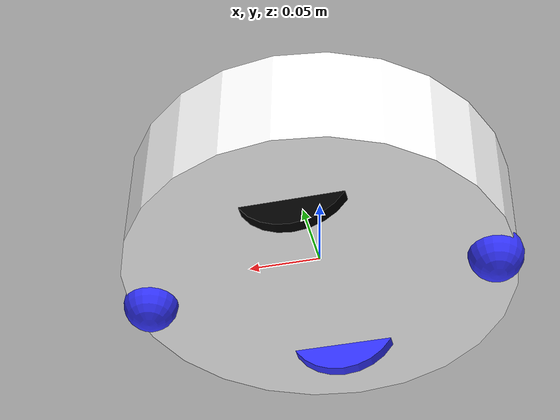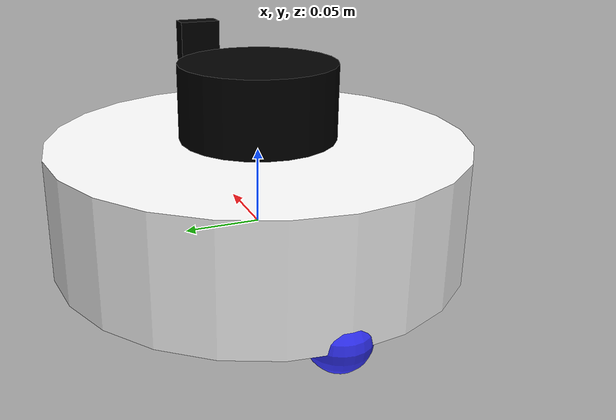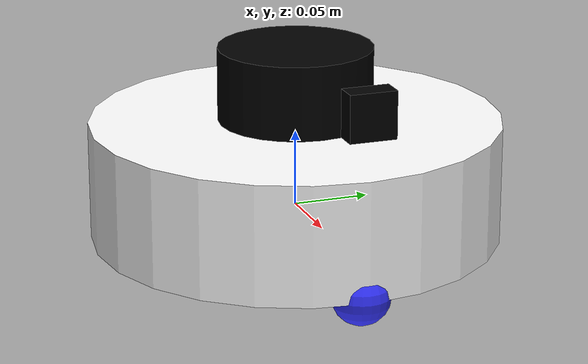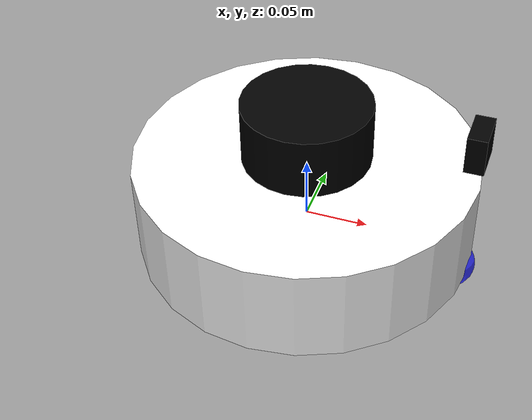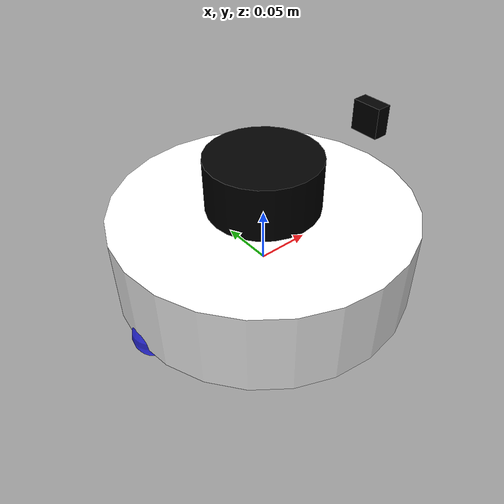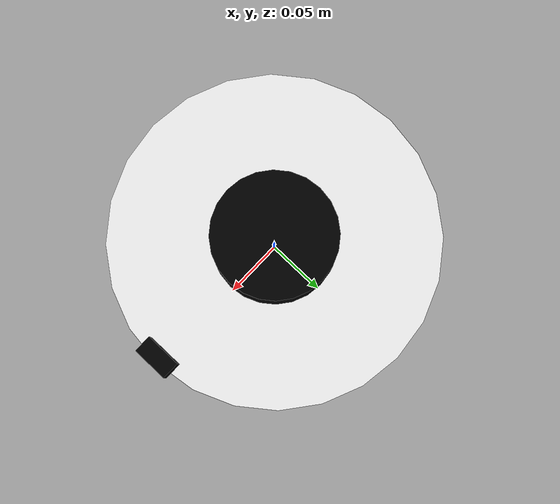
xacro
<?xml version="1.0"?>
<robot xmlns:xacro="http://www.ros.org/wiki/xacro"  name="robot">

    <xacro:arg name="use_ros2_control" default="true"/>
    <xacro:arg name="sim_mode" default="false" />

    <xacro:include filename="robot_core.urdf.xacro"/>

    <xacro:if value="$(arg use_ros2_control)">
        <xacro:include filename="ros2_control.xacro"/>
    </xacro:if>
    <xacro:unless value="$(arg use_ros2_control)">
        <xacro:include filename="gazebo_control.xacro"/>
    </xacro:unless>
    <xacro:include filename="lidar.xacro"/>
    <xacro:include filename="camera.xacro"/>

</robot>

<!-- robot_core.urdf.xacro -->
<robot xmlns:xacro="http://www.ros.org/wiki/xacro"  name="robot">

<xacro:include filename="inertial_macros.xacro"/>

    <material name="white">
        <color rgba="1 1 1 1"/>
    </material>

    <material name="black">
        <color rgba="0 0 0 1"/>
    </material>

    <material name="orange">
        <color rgba="1 0.3 0.1 1"/>
    </material>

    <material name="blue">
        <color rgba="0.2 0.2 1 1"/>
    </material>

    <material name="green">
        <color rgba="0 1 0 1"/>
    </material>

    <material name="red">
        <color rgba="0.8 0 0 1"/>
    </material>

    <material name="grey">
        <color rgba="0.2 0.2 0.2 1"/>
    </material>

<!-- BASE LINK -->
  <link name="base_link">
  </link>

  <link name="base_footprint">
  </link>

  <joint name="base_footprint_joint" type="fixed">
    <parent link="base_link"/>
    <child link="base_footprint"/>
    <origin xyz="0.0 0.0 0.0" rpy="0 0 0"/>
</joint>

<!-- CHASSIS LINK -->

  <link name="chassis">
      <visual>
        <geometry>
          <cylinder radius="0.135" length="0.078"/>
        </geometry>
        <material name="white"/>
      </visual>

      <collision>
        <geometry>
          <cylinder radius="0.135" length="0.078"/>
        </geometry>
      </collision>
      <xacro:inertial_cylinder mass="0.4" length="0.078" radius="0.135">
        <origin xyz="0 0.018 0" rpy="0 0 0"/>
      </xacro:inertial_cylinder>
  </link>

  <joint name="chassis_joint" type="fixed">
    <parent link="base_link"/>
    <child link="chassis"/>
    <origin xyz="0.0 0 0.02" rpy="0 0 0"/>
  </joint>

<!-- LEFT WHEEL LINK -->

  <link name="left_wheel">
      <visual>
        <geometry>
          <cylinder radius="0.04" length="0.008"/>
        </geometry>
        <material name="black"/>
      </visual>

      <collision>
        <geometry>
          <cylinder radius="0.04" length="0.008"/>
        </geometry>
      </collision>
      <xacro:inertial_cylinder mass="0.1" length="0.008" radius="0.04">
        <origin xyz="0 0 0" rpy="0 0 0"/>
      </xacro:inertial_cylinder>
  </link>

  <gazebo reference="left_wheel">
    <material>Gazebo/Black</material>
  </gazebo>

  <joint name="left_wheel_joint" type="continuous">
    <parent link="base_link"/>
    <child link="left_wheel"/>
    <origin xyz="0.0 0.078 0" rpy="-${pi/2} 0 0"/>
    <axis xyz="0 0 1"/>
</joint>
<!-- RIGHT WHEEL LINK -->

  <link name="right_wheel">
      <visual>

        <geometry>
          <cylinder radius="0.04" length="0.008"/>
        </geometry>
        <material name="blue"/>
      </visual>
      <collision>

        <geometry>
          <cylinder radius="0.04" length="0.008"/>
        </geometry>

      </collision>
      <xacro:inertial_cylinder mass="0.05" length="0.008" radius="0.04">
        <origin xyz="0 0 0" rpy="0 0 0"/>
      </xacro:inertial_cylinder>
  </link>
  <gazebo reference="right_wheel">
    <material>Gazebo/Black</material>

  </gazebo>
  <joint name="right_wheel_joint" type="continuous">
    <parent link="base_link"/>
    <child link="right_wheel"/>
    <origin xyz="0.0 -0.078 0.0" rpy="${pi/2} 0 0"/>
    <axis xyz="0 0 -1"/>
</joint>

<!-- CASTER WHEEL LINK-->

<link name="caster_wheel_front">

 <visual>

        <geometry>
          <sphere radius="0.019" />
        </geometry>
        <material name="blue"/>
      </visual>
      <collision>

        <geometry>
          <sphere radius="0.019" />
        </geometry>

      </collision>
      <xacro:inertial_sphere mass="0.1" radius="0.019">
        <origin xyz="0 0 0" rpy="0 0 0"/>
      </xacro:inertial_sphere>

</link>

<joint name="caster_wheel_front_joint" type="fixed">
  <parent link="chassis"/>
  <child link="caster_wheel_front"/>
  <origin xyz="0.12 0 -0.039"/>
</joint>

<gazebo reference="caster_wheel_front">
  <material>Gazebo/Black</material>
  <mu1 value="0.001"/>
  <mu2 value="0.001"/>
</gazebo>

<link name="caster_wheel_rear">

 <visual>

        <geometry>
          <sphere radius="0.019" />
        </geometry>
        <material name="blue"/>
      </visual>
      <collision>

        <geometry>
          <sphere radius="0.019" />
        </geometry>

      </collision>
      <xacro:inertial_sphere mass="0.1" radius="0.019">
        <origin xyz="0 0 0" rpy="0 0 0"/>
      </xacro:inertial_sphere>

</link>

<joint name="caster_wheel_rear_joint" type="fixed">
  <parent link="chassis"/>
  <child link="caster_wheel_rear"/>
  <origin xyz="-0.12 0 -0.039"/>
</joint>

<gazebo reference="caster_wheel_rear">
  <material>Gazebo/Black</material>
  <mu1 value="0.001"/>
  <mu2 value="0.001"/>
</gazebo>

</robot>

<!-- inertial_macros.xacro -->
<robot xmlns:xacro="http://www.ros.org/wiki/xacro" >

    <!-- Specify some standard inertial calculations https://en.wikipedia.org/wiki/List_of_moments_of_inertia -->
    <!-- These make use of xacro's mathematical functionality -->

    <xacro:macro name="inertial_sphere" params="mass radius *origin">
        <inertial>
            <xacro:insert_block name="origin"/>
            <mass value="${mass}" />
            <inertia ixx="${(2/5) * mass * (radius*radius)}" ixy="0.0" ixz="0.0"
                    iyy="${(2/5) * mass * (radius*radius)}" iyz="0.0"
                    izz="${(2/5) * mass * (radius*radius)}" />
        </inertial>
    </xacro:macro>

    <xacro:macro name="inertial_box" params="mass x y z *origin">
        <inertial>
            <xacro:insert_block name="origin"/>
            <mass value="${mass}" />
            <inertia ixx="${(1/12) * mass * (y*y+z*z)}" ixy="0.0" ixz="0.0"
                    iyy="${(1/12) * mass * (x*x+z*z)}" iyz="0.0"
                    izz="${(1/12) * mass * (x*x+y*y)}" />
        </inertial>
    </xacro:macro>

    <xacro:macro name="inertial_cylinder" params="mass length radius *origin">
        <inertial>
            <xacro:insert_block name="origin"/>
            <mass value="${mass}" />
            <inertia ixx="${(1/12) * mass * (3*radius*radius + length*length)}" ixy="0.0" ixz="0.0"
                    iyy="${(1/12) * mass * (3*radius*radius + length*length)}" iyz="0.0"
                    izz="${(1/2) * mass * (radius*radius)}" />
        </inertial>
    </xacro:macro>

</robot>

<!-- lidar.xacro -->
<robot xmlns:xacro="http://www.ros.org/wiki/xacro" >

    <link name="lidar_link">
        <inertial>
          <origin xyz="0 0 0" rpy="0 0 0"/>
          <mass value="0.125"/>
          <inertia ixx="0.001"  ixy="0"  ixz="0" iyy="0.001" iyz="0" izz="0.001" />
        </inertial>

        <collision>
          <origin xyz="0 0 0" rpy="0 0 0"/>
          <geometry>
             <cylinder radius="0.0508" length="0.055"/>
          </geometry>
        </collision>

        <visual>
          <origin xyz="0 0 0" rpy="0 0 0"/>
          <geometry>
             <cylinder radius="0.0508" length="0.055"/>
          </geometry>
          <material name="black"/>
        </visual>
      </link>

      <joint name="lidar_joint" type="fixed">
        <parent link="base_link"/>
        <child link="lidar_link"/>
        <origin xyz="0 0 0.08" rpy="0 0 0"/>
      </joint>

      <gazebo reference="lidar_link">
        <sensor name="lidar" type="ray">
          <always_on>true</always_on>
          <visualize>true</visualize>
          <update_rate>5</update_rate>
          <ray>
            <scan>
              <horizontal>
                <samples>360</samples>
                <resolution>1.000000</resolution>
                <min_angle>0.000000</min_angle>
                <max_angle>6.280000</max_angle>
              </horizontal>
            </scan>
            <range>
              <min>0.120000</min>
              <max>3.5</max>
              <resolution>0.015000</resolution>
            </range>
            <noise>
              <type>gaussian</type>
              <mean>0.0</mean>
              <stddev>0.01</stddev>
            </noise>
          </ray>
          <plugin name="scan" filename="libgazebo_ros_ray_sensor.so">
            <ros>
              <remapping>~/out:=scan</remapping>
            </ros>
            <output_type>sensor_msgs/LaserScan</output_type>
            <frame_name>lidar_link</frame_name>
          </plugin>
        </sensor>
        <material>Gazebo/Black</material>
      </gazebo>

</robot>

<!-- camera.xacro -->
<robot xmlns:xacro="http://www.ros.org/wiki/xacro" >

<!-- CAMERA -->

<link name="camera_link">
    <visual>
      <origin xyz="0 0 0" rpy="0 0 0"/>
      <geometry>
        <box size="0.015 0.03 0.03"/>
      </geometry>
      <material name="black"/>
    </visual>

    <collision>
      <origin xyz="0 0 0" rpy="0 0 0"/>
      <geometry>
        <box size="0.015 0.03 0.03"/>
      </geometry>
    </collision>

    <inertial>
      <origin xyz="0 0 0" rpy="0 0 0"/>
      <mass value="0.035"/>
      <inertia ixx="0.001"  ixy="0"  ixz="0" iyy="0.001" iyz="0" izz="0.001" />
    </inertial>
  </link>

  <joint name="camera_joint" type="fixed">
    <parent link="base_link"/>
    <child link="camera_link"/>
    <origin xyz="0.13 0 0.10" rpy="0 0 0"/>
  </joint>

    <link name="camera_optical_link"/>

  <joint name="camera_optical_joint" type="fixed">
    <origin xyz="0 0 0" rpy="${-pi/2} 0 ${-pi/2}"/>
    <parent link="camera_link"/>
    <child link="camera_optical_link"/>
  </joint>

  <gazebo reference="camera_link">
    <material>Gazebo/Blue</material>
    <sensor name="camera" type="camera">
        <pose> 0 0 0 0 0 0 </pose>
        <visualize>true</visualize>
        <update_rate>10.0</update_rate>
        <camera name="camera">
            <horizontal_fov>1.047198</horizontal_fov>
            <image>
            <width>640</width>
            <height>480</height>
            <format>R8G8B8</format>
            </image>
            <clip>
            <near>0.05</near>
            <far>8.0</far>
            </clip>
        </camera>
        <plugin name="camera_controller" filename="libgazebo_ros_camera.so">

            <frame_name>camera_optical_link</frame_name>

        </plugin>
    </sensor>
  </gazebo>

</robot>
